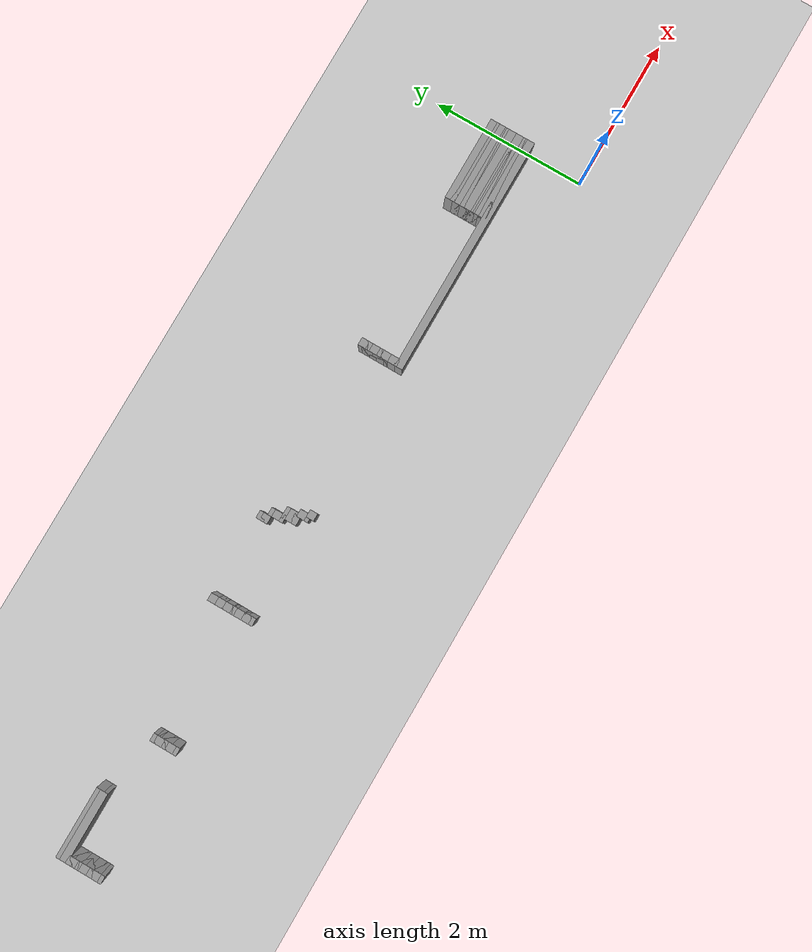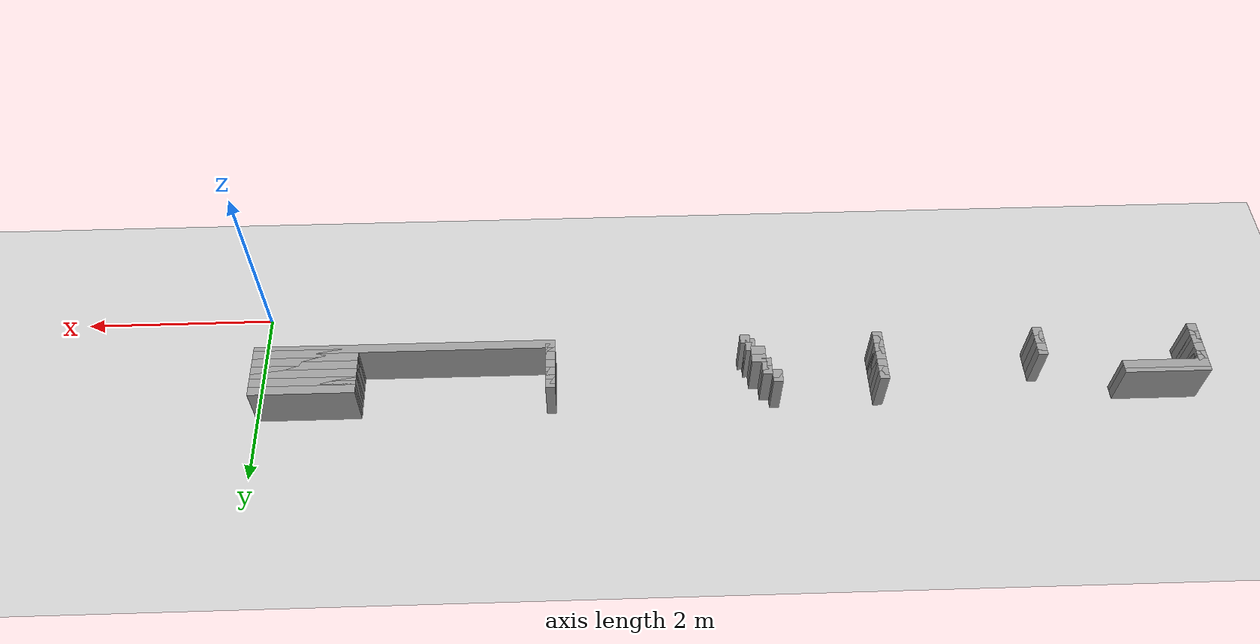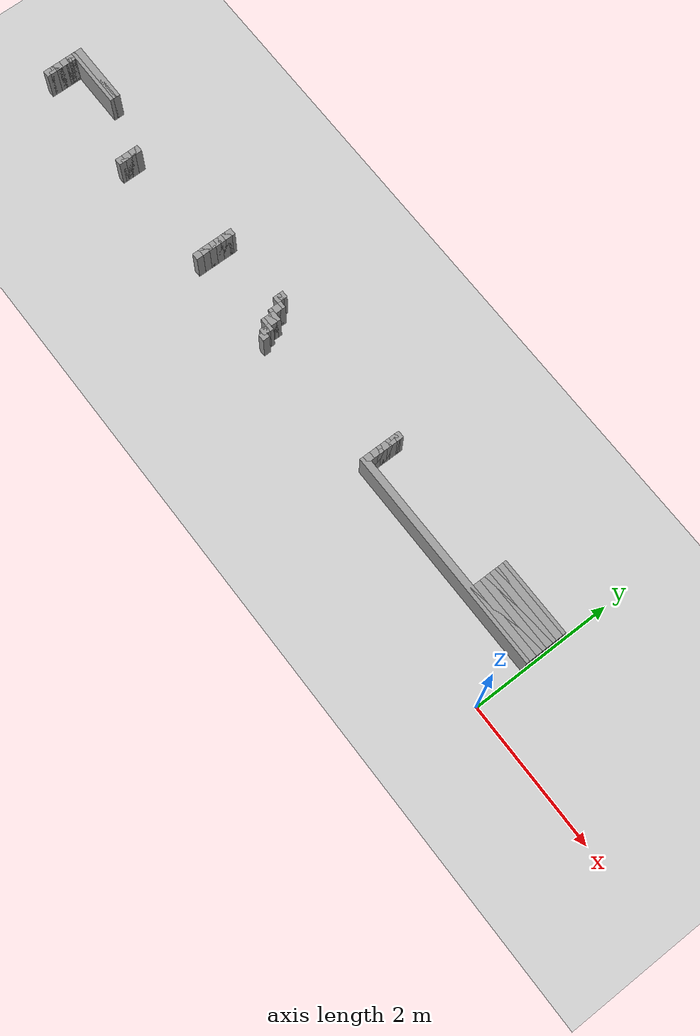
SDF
<sdf version="1.6">
 <world name="GridMap">
  <include><uri>model://sun</uri></include>
  <include><uri>model://ground_plane</uri></include>
  <model name="GridMap">
   <link name="Wall_(31.5,15.0)">
    <collision name="Wall_(31.5,15.0)_Collision">
     <geometry><box><size>3.1500000000000004 0.1 0.5</size></box></geometry>
     <pose>-1.5750000000000002 0.75 0.25 0 -0 0</pose>
    </collision>
    <inertial>
     <mass>0.5</mass>
     <pose>0 0.01 0 0 0 0</pose>
     <inertia><ixx>0.004</ixx><ixy>0.001</ixy><ixz>0</ixz><iyy>0.006</iyy><iyz>0</iyz><izz>0.007</izz></inertia>
    </inertial>
    <visual name="Wall_(31.5,15.0)_Visual">
     <geometry><box><size>3.1500000000000004 0.1 0.5</size></box></geometry>
     <pose>-1.5750000000000002 0.75 0.25 0 -0 0</pose>
     <material>
      <script><uri>file://media/materials/scripts/gazebo.material</uri><name>Gazebo/Grey</name></script>
      <ambient>1 1 1 1</ambient>
     </material>
     <meta><layer>0</layer></meta>
    </visual>
   </link>
   <link name="Wall_(103.0,15.0)">
    <collision name="Wall_(103.0,15.0)_Collision">
     <geometry><box><size>0.1 0.1 0.5</size></box></geometry>
     <pose>-5.15 0.75 0.25 0 -0 0</pose>
    </collision>
    <inertial>
     <mass>0.5</mass>
     <pose>0 0.01 0 0 0 0</pose>
     <inertia><ixx>0.004</ixx><ixy>0.001</ixy><ixz>0</ixz><iyy>0.006</iyy><iyz>0</iyz><izz>0.007</izz></inertia>
    </inertial>
    <visual name="Wall_(103.0,15.0)_Visual">
     <geometry><box><size>0.1 0.1 0.5</size></box></geometry>
     <pose>-5.15 0.75 0.25 0 -0 0</pose>
     <material>
      <script><uri>file://media/materials/scripts/gazebo.material</uri><name>Gazebo/Grey</name></script>
      <ambient>1 1 1 1</ambient>
     </material>
     <meta><layer>0</layer></meta>
    </visual>
   </link>
   <link name="Wall_(131.0,15.0)">
    <collision name="Wall_(131.0,15.0)_Collision">
     <geometry><box><size>0.1 0.1 0.5</size></box></geometry>
     <pose>-6.550000000000001 0.75 0.25 0 -0 0</pose>
    </collision>
    <inertial>
     <mass>0.5</mass>
     <pose>0 0.01 0 0 0 0</pose>
     <inertia><ixx>0.004</ixx><ixy>0.001</ixy><ixz>0</ixz><iyy>0.006</iyy><iyz>0</iyz><izz>0.007</izz></inertia>
    </inertial>
    <visual name="Wall_(131.0,15.0)_Visual">
     <geometry><box><size>0.1 0.1 0.5</size></box></geometry>
     <pose>-6.550000000000001 0.75 0.25 0 -0 0</pose>
     <material>
      <script><uri>file://media/materials/scripts/gazebo.material</uri><name>Gazebo/Grey</name></script>
      <ambient>1 1 1 1</ambient>
     </material>
     <meta><layer>0</layer></meta>
    </visual>
   </link>
   <link name="Wall_(165.0,15.0)">
    <collision name="Wall_(165.0,15.0)_Collision">
     <geometry><box><size>0.1 0.1 0.5</size></box></geometry>
     <pose>-8.25 0.75 0.25 0 -0 0</pose>
    </collision>
    <inertial>
     <mass>0.5</mass>
     <pose>0 0.01 0 0 0 0</pose>
     <inertia><ixx>0.004</ixx><ixy>0.001</ixy><ixz>0</ixz><iyy>0.006</iyy><iyz>0</iyz><izz>0.007</izz></inertia>
    </inertial>
    <visual name="Wall_(165.0,15.0)_Visual">
     <geometry><box><size>0.1 0.1 0.5</size></box></geometry>
     <pose>-8.25 0.75 0.25 0 -0 0</pose>
     <material>
      <script><uri>file://media/materials/scripts/gazebo.material</uri><name>Gazebo/Grey</name></script>
      <ambient>1 1 1 1</ambient>
     </material>
     <meta><layer>0</layer></meta>
    </visual>
   </link>
   <link name="Wall_(198.0,15.0)">
    <collision name="Wall_(198.0,15.0)_Collision">
     <geometry><box><size>0.1 0.1 0.5</size></box></geometry>
     <pose>-9.9 0.75 0.25 0 -0 0</pose>
    </collision>
    <inertial>
     <mass>0.5</mass>
     <pose>0 0.01 0 0 0 0</pose>
     <inertia><ixx>0.004</ixx><ixy>0.001</ixy><ixz>0</ixz><iyy>0.006</iyy><iyz>0</iyz><izz>0.007</izz></inertia>
    </inertial>
    <visual name="Wall_(198.0,15.0)_Visual">
     <geometry><box><size>0.1 0.1 0.5</size></box></geometry>
     <pose>-9.9 0.75 0.25 0 -0 0</pose>
     <material>
      <script><uri>file://media/materials/scripts/gazebo.material</uri><name>Gazebo/Grey</name></script>
      <ambient>1 1 1 1</ambient>
     </material>
     <meta><layer>0</layer></meta>
    </visual>
   </link>
   <link name="Wall_(11.0,16.0)">
    <collision name="Wall_(11.0,16.0)_Collision">
     <geometry><box><size>1.1 0.1 0.5</size></box></geometry>
     <pose>-0.55 0.8 0.25 0 -0 0</pose>
    </collision>
    <inertial>
     <mass>0.5</mass>
     <pose>0 0.01 0 0 0 0</pose>
     <inertia><ixx>0.004</ixx><ixy>0.001</ixy><ixz>0</ixz><iyy>0.006</iyy><iyz>0</iyz><izz>0.007</izz></inertia>
    </inertial>
    <visual name="Wall_(11.0,16.0)_Visual">
     <geometry><box><size>1.1 0.1 0.5</size></box></geometry>
     <pose>-0.55 0.8 0.25 0 -0 0</pose>
     <material>
      <script><uri>file://media/materials/scripts/gazebo.material</uri><name>Gazebo/Grey</name></script>
      <ambient>1 1 1 1</ambient>
     </material>
     <meta><layer>0</layer></meta>
    </visual>
   </link>
   <link name="Wall_(62.0,16.0)">
    <collision name="Wall_(62.0,16.0)_Collision">
     <geometry><box><size>0.1 0.1 0.5</size></box></geometry>
     <pose>-3.1 0.8 0.25 0 -0 0</pose>
    </collision>
    <inertial>
     <mass>0.5</mass>
     <pose>0 0.01 0 0 0 0</pose>
     <inertia><ixx>0.004</ixx><ixy>0.001</ixy><ixz>0</ixz><iyy>0.006</iyy><iyz>0</iyz><izz>0.007</izz></inertia>
    </inertial>
    <visual name="Wall_(62.0,16.0)_Visual">
     <geometry><box><size>0.1 0.1 0.5</size></box></geometry>
     <pose>-3.1 0.8 0.25 0 -0 0</pose>
     <material>
      <script><uri>file://media/materials/scripts/gazebo.material</uri><name>Gazebo/Grey</name></script>
      <ambient>1 1 1 1</ambient>
     </material>
     <meta><layer>0</layer></meta>
    </visual>
   </link>
   <link name="Wall_(104.0,16.0)">
    <collision name="Wall_(104.0,16.0)_Collision">
     <geometry><box><size>0.1 0.1 0.5</size></box></geometry>
     <pose>-5.2 0.8 0.25 0 -0 0</pose>
    </collision>
    <inertial>
     <mass>0.5</mass>
     <pose>0 0.01 0 0 0 0</pose>
     <inertia><ixx>0.004</ixx><ixy>0.001</ixy><ixz>0</ixz><iyy>0.006</iyy><iyz>0</iyz><izz>0.007</izz></inertia>
    </inertial>
    <visual name="Wall_(104.0,16.0)_Visual">
     <geometry><box><size>0.1 0.1 0.5</size></box></geometry>
     <pose>-5.2 0.8 0.25 0 -0 0</pose>
     <material>
      <script><uri>file://media/materials/scripts/gazebo.material</uri><name>Gazebo/Grey</name></script>
      <ambient>1 1 1 1</ambient>
     </material>
     <meta><layer>0</layer></meta>
    </visual>
   </link>
   <link name="Wall_(131.0,16.0)">
    <collision name="Wall_(131.0,16.0)_Collision">
     <geometry><box><size>0.1 0.1 0.5</size></box></geometry>
     <pose>-6.550000000000001 0.8 0.25 0 -0 0</pose>
    </collision>
    <inertial>
     <mass>0.5</mass>
     <pose>0 0.01 0 0 0 0</pose>
     <inertia><ixx>0.004</ixx><ixy>0.001</ixy><ixz>0</ixz><iyy>0.006</iyy><iyz>0</iyz><izz>0.007</izz></inertia>
    </inertial>
    <visual name="Wall_(131.0,16.0)_Visual">
     <geometry><box><size>0.1 0.1 0.5</size></box></geometry>
     <pose>-6.550000000000001 0.8 0.25 0 -0 0</pose>
     <material>
      <script><uri>file://media/materials/scripts/gazebo.material</uri><name>Gazebo/Grey</name></script>
      <ambient>1 1 1 1</ambient>
     </material>
     <meta><layer>0</layer></meta>
    </visual>
   </link>
   <link name="Wall_(165.0,16.0)">
    <collision name="Wall_(165.0,16.0)_Collision">
     <geometry><box><size>0.1 0.1 0.5</size></box></geometry>
     <pose>-8.25 0.8 0.25 0 -0 0</pose>
    </collision>
    <inertial>
     <mass>0.5</mass>
     <pose>0 0.01 0 0 0 0</pose>
     <inertia><ixx>0.004</ixx><ixy>0.001</ixy><ixz>0</ixz><iyy>0.006</iyy><iyz>0</iyz><izz>0.007</izz></inertia>
    </inertial>
    <visual name="Wall_(165.0,16.0)_Visual">
     <geometry><box><size>0.1 0.1 0.5</size></box></geometry>
     <pose>-8.25 0.8 0.25 0 -0 0</pose>
     <material>
      <script><uri>file://media/materials/scripts/gazebo.material</uri><name>Gazebo/Grey</name></script>
      <ambient>1 1 1 1</ambient>
     </material>
     <meta><layer>0</layer></meta>
    </visual>
   </link>
   <link name="Wall_(198.0,16.0)">
    <collision name="Wall_(198.0,16.0)_Collision">
     <geometry><box><size>0.1 0.1 0.5</size></box></geometry>
     <pose>-9.9 0.8 0.25 0 -0 0</pose>
    </collision>
    <inertial>
     <mass>0.5</mass>
     <pose>0 0.01 0 0 0 0</pose>
     <inertia><ixx>0.004</ixx><ixy>0.001</ixy><ixz>0</ixz><iyy>0.006</iyy><iyz>0</iyz><izz>0.007</izz></inertia>
    </inertial>
    <visual name="Wall_(198.0,16.0)_Visual">
     <geometry><box><size>0.1 0.1 0.5</size></box></geometry>
     <pose>-9.9 0.8 0.25 0 -0 0</pose>
     <material>
      <script><uri>file://media/materials/scripts/gazebo.material</uri><name>Gazebo/Grey</name></script>
      <ambient>1 1 1 1</ambient>
     </material>
     <meta><layer>0</layer></meta>
    </visual>
   </link>
   <link name="Wall_(11.0,17.0)">
    <collision name="Wall_(11.0,17.0)_Collision">
     <geometry><box><size>1.1 0.1 0.5</size></box></geometry>
     <pose>-0.55 0.8500000000000001 0.25 0 -0 0</pose>
    </collision>
    <inertial>
     <mass>0.5</mass>
     <pose>0 0.01 0 0 0 0</pose>
     <inertia><ixx>0.004</ixx><ixy>0.001</ixy><ixz>0</ixz><iyy>0.006</iyy><iyz>0</iyz><izz>0.007</izz></inertia>
    </inertial>
    <visual name="Wall_(11.0,17.0)_Visual">
     <geometry><box><size>1.1 0.1 0.5</size></box></geometry>
     <pose>-0.55 0.8500000000000001 0.25 0 -0 0</pose>
     <material>
      <script><uri>file://media/materials/scripts/gazebo.material</uri><name>Gazebo/Grey</name></script>
      <ambient>1 1 1 1</ambient>
     </material>
     <meta><layer>0</layer></meta>
    </visual>
   </link>
   <link name="Wall_(62.0,17.0)">
    <collision name="Wall_(62.0,17.0)_Collision">
     <geometry><box><size>0.1 0.1 0.5</size></box></geometry>
     <pose>-3.1 0.8500000000000001 0.25 0 -0 0</pose>
    </collision>
    <inertial>
     <mass>0.5</mass>
     <pose>0 0.01 0 0 0 0</pose>
     <inertia><ixx>0.004</ixx><ixy>0.001</ixy><ixz>0</ixz><iyy>0.006</iyy><iyz>0</iyz><izz>0.007</izz></inertia>
    </inertial>
    <visual name="Wall_(62.0,17.0)_Visual">
     <geometry><box><size>0.1 0.1 0.5</size></box></geometry>
     <pose>-3.1 0.8500000000000001 0.25 0 -0 0</pose>
     <material>
      <script><uri>file://media/materials/scripts/gazebo.material</uri><name>Gazebo/Grey</name></script>
      <ambient>1 1 1 1</ambient>
     </material>
     <meta><layer>0</layer></meta>
    </visual>
   </link>
   <link name="Wall_(104.0,17.0)">
    <collision name="Wall_(104.0,17.0)_Collision">
     <geometry><box><size>0.1 0.1 0.5</size></box></geometry>
     <pose>-5.2 0.8500000000000001 0.25 0 -0 0</pose>
    </collision>
    <inertial>
     <mass>0.5</mass>
     <pose>0 0.01 0 0 0 0</pose>
     <inertia><ixx>0.004</ixx><ixy>0.001</ixy><ixz>0</ixz><iyy>0.006</iyy><iyz>0</iyz><izz>0.007</izz></inertia>
    </inertial>
    <visual name="Wall_(104.0,17.0)_Visual">
     <geometry><box><size>0.1 0.1 0.5</size></box></geometry>
     <pose>-5.2 0.8500000000000001 0.25 0 -0 0</pose>
     <material>
      <script><uri>file://media/materials/scripts/gazebo.material</uri><name>Gazebo/Grey</name></script>
      <ambient>1 1 1 1</ambient>
     </material>
     <meta><layer>0</layer></meta>
    </visual>
   </link>
   <link name="Wall_(131.0,17.0)">
    <collision name="Wall_(131.0,17.0)_Collision">
     <geometry><box><size>0.1 0.1 0.5</size></box></geometry>
     <pose>-6.550000000000001 0.8500000000000001 0.25 0 -0 0</pose>
    </collision>
    <inertial>
     <mass>0.5</mass>
     <pose>0 0.01 0 0 0 0</pose>
     <inertia><ixx>0.004</ixx><ixy>0.001</ixy><ixz>0</ixz><iyy>0.006</iyy><iyz>0</iyz><izz>0.007</izz></inertia>
    </inertial>
    <visual name="Wall_(131.0,17.0)_Visual">
     <geometry><box><size>0.1 0.1 0.5</size></box></geometry>
     <pose>-6.550000000000001 0.8500000000000001 0.25 0 -0 0</pose>
     <material>
      <script><uri>file://media/materials/scripts/gazebo.material</uri><name>Gazebo/Grey</name></script>
      <ambient>1 1 1 1</ambient>
     </material>
     <meta><layer>0</layer></meta>
    </visual>
   </link>
   <link name="Wall_(165.0,17.0)">
    <collision name="Wall_(165.0,17.0)_Collision">
     <geometry><box><size>0.1 0.1 0.5</size></box></geometry>
     <pose>-8.25 0.8500000000000001 0.25 0 -0 0</pose>
    </collision>
    <inertial>
     <mass>0.5</mass>
     <pose>0 0.01 0 0 0 0</pose>
     <inertia><ixx>0.004</ixx><ixy>0.001</ixy><ixz>0</ixz><iyy>0.006</iyy><iyz>0</iyz><izz>0.007</izz></inertia>
    </inertial>
    <visual name="Wall_(165.0,17.0)_Visual">
     <geometry><box><size>0.1 0.1 0.5</size></box></geometry>
     <pose>-8.25 0.8500000000000001 0.25 0 -0 0</pose>
     <material>
      <script><uri>file://media/materials/scripts/gazebo.material</uri><name>Gazebo/Grey</name></script>
      <ambient>1 1 1 1</ambient>
     </material>
     <meta><layer>0</layer></meta>
    </visual>
   </link>
   <link name="Wall_(198.0,17.0)">
    <collision name="Wall_(198.0,17.0)_Collision">
     <geometry><box><size>0.1 0.1 0.5</size></box></geometry>
     <pose>-9.9 0.8500000000000001 0.25 0 -0 0</pose>
    </collision>
    <inertial>
     <mass>0.5</mass>
     <pose>0 0.01 0 0 0 0</pose>
     <inertia><ixx>0.004</ixx><ixy>0.001</ixy><ixz>0</ixz><iyy>0.006</iyy><iyz>0</iyz><izz>0.007</izz></inertia>
    </inertial>
    <visual name="Wall_(198.0,17.0)_Visual">
     <geometry><box><size>0.1 0.1 0.5</size></box></geometry>
     <pose>-9.9 0.8500000000000001 0.25 0 -0 0</pose>
     <material>
      <script><uri>file://media/materials/scripts/gazebo.material</uri><name>Gazebo/Grey</name></script>
      <ambient>1 1 1 1</ambient>
     </material>
     <meta><layer>0</layer></meta>
    </visual>
   </link>
   <link name="Wall_(11.0,18.0)">
    <collision name="Wall_(11.0,18.0)_Collision">
     <geometry><box><size>1.1 0.1 0.5</size></box></geometry>
     <pose>-0.55 0.9 0.25 0 -0 0</pose>
    </collision>
    <inertial>
     <mass>0.5</mass>
     <pose>0 0.01 0 0 0 0</pose>
     <inertia><ixx>0.004</ixx><ixy>0.001</ixy><ixz>0</ixz><iyy>0.006</iyy><iyz>0</iyz><izz>0.007</izz></inertia>
    </inertial>
    <visual name="Wall_(11.0,18.0)_Visual">
     <geometry><box><size>1.1 0.1 0.5</size></box></geometry>
     <pose>-0.55 0.9 0.25 0 -0 0</pose>
     <material>
      <script><uri>file://media/materials/scripts/gazebo.material</uri><name>Gazebo/Grey</name></script>
      <ambient>1 1 1 1</ambient>
     </material>
     <meta><layer>0</layer></meta>
    </visual>
   </link>
   <link name="Wall_(62.0,18.0)">
    <collision name="Wall_(62.0,18.0)_Collision">
     <geometry><box><size>0.1 0.1 0.5</size></box></geometry>
     <pose>-3.1 0.9 0.25 0 -0 0</pose>
    </collision>
    <inertial>
     <mass>0.5</mass>
     <pose>0 0.01 0 0 0 0</pose>
     <inertia><ixx>0.004</ixx><ixy>0.001</ixy><ixz>0</ixz><iyy>0.006</iyy><iyz>0</iyz><izz>0.007</izz></inertia>
    </inertial>
    <visual name="Wall_(62.0,18.0)_Visual">
     <geometry><box><size>0.1 0.1 0.5</size></box></geometry>
     <pose>-3.1 0.9 0.25 0 -0 0</pose>
     <material>
      <script><uri>file://media/materials/scripts/gazebo.material</uri><name>Gazebo/Grey</name></script>
      <ambient>1 1 1 1</ambient>
     </material>
     <meta><layer>0</layer></meta>
    </visual>
   </link>
   <link name="Wall_(105.5,18.0)">
    <collision name="Wall_(105.5,18.0)_Collision">
     <geometry><box><size>0.15000000000000002 0.1 0.5</size></box></geometry>
     <pose>-5.275 0.9 0.25 0 -0 0</pose>
    </collision>
    <inertial>
     <mass>0.5</mass>
     <pose>0 0.01 0 0 0 0</pose>
     <inertia><ixx>0.004</ixx><ixy>0.001</ixy><ixz>0</ixz><iyy>0.006</iyy><iyz>0</iyz><izz>0.007</izz></inertia>
    </inertial>
    <visual name="Wall_(105.5,18.0)_Visual">
     <geometry><box><size>0.15000000000000002 0.1 0.5</size></box></geometry>
     <pose>-5.275 0.9 0.25 0 -0 0</pose>
     <material>
      <script><uri>file://media/materials/scripts/gazebo.material</uri><name>Gazebo/Grey</name></script>
      <ambient>1 1 1 1</ambient>
     </material>
     <meta><layer>0</layer></meta>
    </visual>
   </link>
   <link name="Wall_(131.0,18.0)">
    <collision name="Wall_(131.0,18.0)_Collision">
     <geometry><box><size>0.1 0.1 0.5</size></box></geometry>
     <pose>-6.550000000000001 0.9 0.25 0 -0 0</pose>
    </collision>
    <inertial>
     <mass>0.5</mass>
     <pose>0 0.01 0 0 0 0</pose>
     <inertia><ixx>0.004</ixx><ixy>0.001</ixy><ixz>0</ixz><iyy>0.006</iyy><iyz>0</iyz><izz>0.007</izz></inertia>
    </inertial>
    <visual name="Wall_(131.0,18.0)_Visual">
     <geometry><box><size>0.1 0.1 0.5</size></box></geometry>
     <pose>-6.550000000000001 0.9 0.25 0 -0 0</pose>
     <material>
      <script><uri>file://media/materials/scripts/gazebo.material</uri><name>Gazebo/Grey</name></script>
      <ambient>1 1 1 1</ambient>
     </material>
     <meta><layer>0</layer></meta>
    </visual>
   </link>
   <link name="Wall_(165.0,18.0)">
    <collision name="Wall_(165.0,18.0)_Collision">
     <geometry><box><size>0.1 0.1 0.5</size></box></geometry>
     <pose>-8.25 0.9 0.25 0 -0 0</pose>
    </collision>
    <inertial>
     <mass>0.5</mass>
     <pose>0 0.01 0 0 0 0</pose>
     <inertia><ixx>0.004</ixx><ixy>0.001</ixy><ixz>0</ixz><iyy>0.006</iyy><iyz>0</iyz><izz>0.007</izz></inertia>
    </inertial>
    <visual name="Wall_(165.0,18.0)_Visual">
     <geometry><box><size>0.1 0.1 0.5</size></box></geometry>
     <pose>-8.25 0.9 0.25 0 -0 0</pose>
     <material>
      <script><uri>file://media/materials/scripts/gazebo.material</uri><name>Gazebo/Grey</name></script>
      <ambient>1 1 1 1</ambient>
     </material>
     <meta><layer>0</layer></meta>
    </visual>
   </link>
   <link name="Wall_(198.0,18.0)">
    <collision name="Wall_(198.0,18.0)_Collision">
     <geometry><box><size>0.1 0.1 0.5</size></box></geometry>
     <pose>-9.9 0.9 0.25 0 -0 0</pose>
    </collision>
    <inertial>
     <mass>0.5</mass>
     <pose>0 0.01 0 0 0 0</pose>
     <inertia><ixx>0.004</ixx><ixy>0.001</ixy><ixz>0</ixz><iyy>0.006</iyy><iyz>0</iyz><izz>0.007</izz></inertia>
    </inertial>
    <visual name="Wall_(198.0,18.0)_Visual">
     <geometry><box><size>0.1 0.1 0.5</size></box></geometry>
     <pose>-9.9 0.9 0.25 0 -0 0</pose>
     <material>
      <script><uri>file://media/materials/scripts/gazebo.material</uri><name>Gazebo/Grey</name></script>
      <ambient>1 1 1 1</ambient>
     </material>
     <meta><layer>0</layer></meta>
    </visual>
   </link>
   <link name="Wall_(11.0,19.0)">
    <collision name="Wall_(11.0,19.0)_Collision">
     <geometry><box><size>1.1 0.1 0.5</size></box></geometry>
     <pose>-0.55 0.9500000000000001 0.25 0 -0 0</pose>
    </collision>
    <inertial>
     <mass>0.5</mass>
     <pose>0 0.01 0 0 0 0</pose>
     <inertia><ixx>0.004</ixx><ixy>0.001</ixy><ixz>0</ixz><iyy>0.006</iyy><iyz>0</iyz><izz>0.007</izz></inertia>
    </inertial>
    <visual name="Wall_(11.0,19.0)_Visual">
     <geometry><box><size>1.1 0.1 0.5</size></box></geometry>
     <pose>-0.55 0.9500000000000001 0.25 0 -0 0</pose>
     <material>
      <script><uri>file://media/materials/scripts/gazebo.material</uri><name>Gazebo/Grey</name></script>
      <ambient>1 1 1 1</ambient>
     </material>
     <meta><layer>0</layer></meta>
    </visual>
   </link>
   <link name="Wall_(62.0,19.0)">
    <collision name="Wall_(62.0,19.0)_Collision">
     <geometry><box><size>0.1 0.1 0.5</size></box></geometry>
     <pose>-3.1 0.9500000000000001 0.25 0 -0 0</pose>
    </collision>
    <inertial>
     <mass>0.5</mass>
     <pose>0 0.01 0 0 0 0</pose>
     <inertia><ixx>0.004</ixx><ixy>0.001</ixy><ixz>0</ixz><iyy>0.006</iyy><iyz>0</iyz><izz>0.007</izz></inertia>
    </inertial>
    <visual name="Wall_(62.0,19.0)_Visual">
     <geometry><box><size>0.1 0.1 0.5</size></box></geometry>
     <pose>-3.1 0.9500000000000001 0.25 0 -0 0</pose>
     <material>
      <script><uri>file://media/materials/scripts/gazebo.material</uri><name>Gazebo/Grey</name></script>
      <ambient>1 1 1 1</ambient>
     </material>
     <meta><layer>0</layer></meta>
    </visual>
   </link>
   <link name="Wall_(105.5,19.0)">
    <collision name="Wall_(105.5,19.0)_Collision">
     <geometry><box><size>0.15000000000000002 0.1 0.5</size></box></geometry>
     <pose>-5.275 0.9500000000000001 0.25 0 -0 0</pose>
    </collision>
    <inertial>
     <mass>0.5</mass>
     <pose>0 0.01 0 0 0 0</pose>
     <inertia><ixx>0.004</ixx><ixy>0.001</ixy><ixz>0</ixz><iyy>0.006</iyy><iyz>0</iyz><izz>0.007</izz></inertia>
    </inertial>
    <visual name="Wall_(105.5,19.0)_Visual">
     <geometry><box><size>0.15000000000000002 0.1 0.5</size></box></geometry>
     <pose>-5.275 0.9500000000000001 0.25 0 -0 0</pose>
     <material>
      <script><uri>file://media/materials/scripts/gazebo.material</uri><name>Gazebo/Grey</name></script>
      <ambient>1 1 1 1</ambient>
     </material>
     <meta><layer>0</layer></meta>
    </visual>
   </link>
   <link name="Wall_(131.0,19.0)">
    <collision name="Wall_(131.0,19.0)_Collision">
     <geometry><box><size>0.1 0.1 0.5</size></box></geometry>
     <pose>-6.550000000000001 0.9500000000000001 0.25 0 -0 0</pose>
    </collision>
    <inertial>
     <mass>0.5</mass>
     <pose>0 0.01 0 0 0 0</pose>
     <inertia><ixx>0.004</ixx><ixy>0.001</ixy><ixz>0</ixz><iyy>0.006</iyy><iyz>0</iyz><izz>0.007</izz></inertia>
    </inertial>
    <visual name="Wall_(131.0,19.0)_Visual">
     <geometry><box><size>0.1 0.1 0.5</size></box></geometry>
     <pose>-6.550000000000001 0.9500000000000001 0.25 0 -0 0</pose>
     <material>
      <script><uri>file://media/materials/scripts/gazebo.material</uri><name>Gazebo/Grey</name></script>
      <ambient>1 1 1 1</ambient>
     </material>
     <meta><layer>0</layer></meta>
    </visual>
   </link>
   <link name="Wall_(165.0,19.0)">
    <collision name="Wall_(165.0,19.0)_Collision">
     <geometry><box><size>0.1 0.1 0.5</size></box></geometry>
     <pose>-8.25 0.9500000000000001 0.25 0 -0 0</pose>
    </collision>
    <inertial>
     <mass>0.5</mass>
     <pose>0 0.01 0 0 0 0</pose>
     <inertia><ixx>0.004</ixx><ixy>0.001</ixy><ixz>0</ixz><iyy>0.006</iyy><iyz>0</iyz><izz>0.007</izz></inertia>
    </inertial>
    <visual name="Wall_(165.0,19.0)_Visual">
     <geometry><box><size>0.1 0.1 0.5</size></box></geometry>
     <pose>-8.25 0.9500000000000001 0.25 0 -0 0</pose>
     <material>
      <script><uri>file://media/materials/scripts/gazebo.material</uri><name>Gazebo/Grey</name></script>
      <ambient>1 1 1 1</ambient>
     </material>
     <meta><layer>0</layer></meta>
    </visual>
   </link>
   <link name="Wall_(198.0,19.0)">
    <collision name="Wall_(198.0,19.0)_Collision">
     <geometry><box><size>0.1 0.1 0.5</size></box></geometry>
     <pose>-9.9 0.9500000000000001 0.25 0 -0 0</pose>
    </collision>
    <inertial>
     <mass>0.5</mass>
     <pose>0 0.01 0 0 0 0</pose>
     <inertia><ixx>0.004</ixx><ixy>0.001</ixy><ixz>0</ixz><iyy>0.006</iyy><iyz>0</iyz><izz>0.007</izz></inertia>
    </inertial>
    <visual name="Wall_(198.0,19.0)_Visual">
     <geometry><box><size>0.1 0.1 0.5</size></box></geometry>
     <pose>-9.9 0.9500000000000001 0.25 0 -0 0</pose>
     <material>
      <script><uri>file://media/materials/scripts/gazebo.material</uri><name>Gazebo/Grey</name></script>
      <ambient>1 1 1 1</ambient>
     </material>
     <meta><layer>0</layer></meta>
    </visual>
   </link>
   <link name="Wall_(11.0,20.0)">
    <collision name="Wall_(11.0,20.0)_Collision">
     <geometry><box><size>1.1 0.1 0.5</size></box></geometry>
     <pose>-0.55 1.0 0.25 0 -0 0</pose>
    </collision>
    <inertial>
     <mass>0.5</mass>
     <pose>0 0.01 0 0 0 0</pose>
     <inertia><ixx>0.004</ixx><ixy>0.001</ixy><ixz>0</ixz><iyy>0.006</iyy><iyz>0</iyz><izz>0.007</izz></inertia>
    </inertial>
    <visual name="Wall_(11.0,20.0)_Visual">
     <geometry><box><size>1.1 0.1 0.5</size></box></geometry>
     <pose>-0.55 1.0 0.25 0 -0 0</pose>
     <material>
      <script><uri>file://media/materials/scripts/gazebo.material</uri><name>Gazebo/Grey</name></script>
      <ambient>1 1 1 1</ambient>
     </material>
     <meta><layer>0</layer></meta>
    </visual>
   </link>
   <link name="Wall_(62.0,20.0)">
    <collision name="Wall_(62.0,20.0)_Collision">
     <geometry><box><size>0.1 0.1 0.5</size></box></geometry>
     <pose>-3.1 1.0 0.25 0 -0 0</pose>
    </collision>
    <inertial>
     <mass>0.5</mass>
     <pose>0 0.01 0 0 0 0</pose>
     <inertia><ixx>0.004</ixx><ixy>0.001</ixy><ixz>0</ixz><iyy>0.006</iyy><iyz>0</iyz><izz>0.007</izz></inertia>
    </inertial>
    <visual name="Wall_(62.0,20.0)_Visual">
     <geometry><box><size>0.1 0.1 0.5</size></box></geometry>
     <pose>-3.1 1.0 0.25 0 -0 0</pose>
     <material>
      <script><uri>file://media/materials/scripts/gazebo.material</uri><name>Gazebo/Grey</name></script>
      <ambient>1 1 1 1</ambient>
     </material>
     <meta><layer>0</layer></meta>
    </visual>
   </link>
   <link name="Wall_(105.5,20.0)">
    <collision name="Wall_(105.5,20.0)_Collision">
     <geometry><box><size>0.15000000000000002 0.1 0.5</size></box></geometry>
     <pose>-5.275 1.0 0.25 0 -0 0</pose>
    </collision>
    <inertial>
     <mass>0.5</mass>
     <pose>0 0.01 0 0 0 0</pose>
     <inertia><ixx>0.004</ixx><ixy>0.001</ixy><ixz>0</ixz><iyy>0.006</iyy><iyz>0</iyz><izz>0.007</izz></inertia>
    </inertial>
    <visual name="Wall_(105.5,20.0)_Visual">
     <geometry><box><size>0.15000000000000002 0.1 0.5</size></box></geometry>
     <pose>-5.275 1.0 0.25 0 -0 0</pose>
     <material>
      <script><uri>file://media/materials/scripts/gazebo.material</uri><name>Gazebo/Grey</name></script>
      <ambient>1 1 1 1</ambient>
     </material>
     <meta><layer>0</layer></meta>
    </visual>
   </link>
   <link name="Wall_(131.0,20.0)">
    <collision name="Wall_(131.0,20.0)_Collision">
     <geometry><box><size>0.1 0.1 0.5</size></box></geometry>
     <pose>-6.550000000000001 1.0 0.25 0 -0 0</pose>
    </collision>
    <inertial>
     <mass>0.5</mass>
     <pose>0 0.01 0 0 0 0</pose>
     <inertia><ixx>0.004</ixx><ixy>0.001</ixy><ixz>0</ixz><iyy>0.006</iyy><iyz>0</iyz><izz>0.007</izz></inertia>
    </inertial>
    <visual name="Wall_(131.0,20.0)_Visual">
     <geometry><box><size>0.1 0.1 0.5</size></box></geometry>
     <pose>-6.550000000000001 1.0 0.25 0 -0 0</pose>
     <material>
      <script><uri>file://media/materials/scripts/gazebo.material</uri><name>Gazebo/Grey</name></script>
      <ambient>1 1 1 1</ambient>
     </material>
     <meta><layer>0</layer></meta>
    </visual>
   </link>
   <link name="Wall_(165.0,20.0)">
    <collision name="Wall_(165.0,20.0)_Collision">
     <geometry><box><size>0.1 0.1 0.5</size></box></geometry>
     <pose>-8.25 1.0 0.25 0 -0 0</pose>
    </collision>
    <inertial>
     <mass>0.5</mass>
     <pose>0 0.01 0 0 0 0</pose>
     <inertia><ixx>0.004</ixx><ixy>0.001</ixy><ixz>0</ixz><iyy>0.006</iyy><iyz>0</iyz><izz>0.007</izz></inertia>
    </inertial>
    <visual name="Wall_(165.0,20.0)_Visual">
     <geometry><box><size>0.1 0.1 0.5</size></box></geometry>
     <pose>-8.25 1.0 0.25 0 -0 0</pose>
     <material>
      <script><uri>file://media/materials/scripts/gazebo.material</uri><name>Gazebo/Grey</name></script>
      <ambient>1 1 1 1</ambient>
     </material>
     <meta><layer>0</layer></meta>
    </visual>
   </link>
   <link name="Wall_(198.0,20.0)">
    <collision name="Wall_(198.0,20.0)_Collision">
     <geometry><box><size>0.1 0.1 0.5</size></box></geometry>
     <pose>-9.9 1.0 0.25 0 -0 0</pose>
    </collision>
    <inertial>
     <mass>0.5</mass>
     <pose>0 0.01 0 0 0 0</pose>
     <inertia><ixx>0.004</ixx><ixy>0.001</ixy><ixz>0</ixz><iyy>0.006</iyy><iyz>0</iyz><izz>0.007</izz></inertia>
    </inertial>
    <visual name="Wall_(198.0,20.0)_Visual">
     <geometry><box><size>0.1 0.1 0.5</size></box></geometry>
     <pose>-9.9 1.0 0.25 0 -0 0</pose>
     <material>
      <script><uri>file://media/materials/scripts/gazebo.material</uri><name>Gazebo/Grey</name></script>
      <ambient>1 1 1 1</ambient>
     </material>
     <meta><layer>0</layer></meta>
    </visual>
   </link>
   <link name="Wall_(11.0,21.0)">
    <collision name="Wall_(11.0,21.0)_Collision">
     <geometry><box><size>1.1 0.1 0.5</size></box></geometry>
     <pose>-0.55 1.05 0.25 0 -0 0</pose>
    </collision>
    <inertial>
     <mass>0.5</mass>
     <pose>0 0.01 0 0 0 0</pose>
     <inertia><ixx>0.004</ixx><ixy>0.001</ixy><ixz>0</ixz><iyy>0.006</iyy><iyz>0</iyz><izz>0.007</izz></inertia>
    </inertial>
    <visual name="Wall_(11.0,21.0)_Visual">
     <geometry><box><size>1.1 0.1 0.5</size></box></geometry>
     <pose>-0.55 1.05 0.25 0 -0 0</pose>
     <material>
      <script><uri>file://media/materials/scripts/gazebo.material</uri><name>Gazebo/Grey</name></script>
      <ambient>1 1 1 1</ambient>
     </material>
     <meta><layer>0</layer></meta>
    </visual>
   </link>
   <link name="Wall_(62.0,21.0)">
    <collision name="Wall_(62.0,21.0)_Collision">
     <geometry><box><size>0.1 0.1 0.5</size></box></geometry>
     <pose>-3.1 1.05 0.25 0 -0 0</pose>
    </collision>
    <inertial>
     <mass>0.5</mass>
     <pose>0 0.01 0 0 0 0</pose>
     <inertia><ixx>0.004</ixx><ixy>0.001</ixy><ixz>0</ixz><iyy>0.006</iyy><iyz>0</iyz><izz>0.007</izz></inertia>
    </inertial>
    <visual name="Wall_(62.0,21.0)_Visual">
     <geometry><box><size>0.1 0.1 0.5</size></box></geometry>
     <pose>-3.1 1.05 0.25 0 -0 0</pose>
     <material>
      <script><uri>file://media/materials/scripts/gazebo.material</uri><name>Gazebo/Grey</name></script>
      <ambient>1 1 1 1</ambient>
     </material>
     <meta><layer>0</layer></meta>
    </visual>
   </link>
   <link name="Wall_(107.0,21.0)">
    <collision name="Wall_(107.0,21.0)_Collision">
     <geometry><box><size>0.1 0.1 0.5</size></box></geometry>
     <pose>-5.3500000000000005 1.05 0.25 0 -0 0</pose>
    </collision>
    <inertial>
     <mass>0.5</mass>
     <pose>0 0.01 0 0 0 0</pose>
     <inertia><ixx>0.004</ixx><ixy>0.001</ixy><ixz>0</ixz><iyy>0.006</iyy><iyz>0</iyz><izz>0.007</izz></inertia>
    </inertial>
    <visual name="Wall_(107.0,21.0)_Visual">
     <geometry><box><size>0.1 0.1 0.5</size></box></geometry>
     <pose>-5.3500000000000005 1.05 0.25 0 -0 0</pose>
     <material>
      <script><uri>file://media/materials/scripts/gazebo.material</uri><name>Gazebo/Grey</name></script>
      <ambient>1 1 1 1</ambient>
     </material>
     <meta><layer>0</layer></meta>
    </visual>
   </link>
   <link name="Wall_(131.0,21.0)">
    <collision name="Wall_(131.0,21.0)_Collision">
     <geometry><box><size>0.1 0.1 0.5</size></box></geometry>
     <pose>-6.550000000000001 1.05 0.25 0 -0 0</pose>
    </collision>
    <inertial>
     <mass>0.5</mass>
     <pose>0 0.01 0 0 0 0</pose>
     <inertia><ixx>0.004</ixx><ixy>0.001</ixy><ixz>0</ixz><iyy>0.006</iyy><iyz>0</iyz><izz>0.007</izz></inertia>
    </inertial>
    <visual name="Wall_(131.0,21.0)_Visual">
     <geometry><box><size>0.1 0.1 0.5</size></box></geometry>
     <pose>-6.550000000000001 1.05 0.25 0 -0 0</pose>
     <material>
      <script><uri>file://media/materials/scripts/gazebo.material</uri><name>Gazebo/Grey</name></script>
      <ambient>1 1 1 1</ambient>
     </material>
     <meta><layer>0</layer></meta>
    </visual>
   </link>
   <link name="Wall_(198.0,21.0)">
    <collision name="Wall_(198.0,21.0)_Collision">
     <geometry><box><size>0.1 0.1 0.5</size></box></geometry>
     <pose>-9.9 1.05 0.25 0 -0 0</pose>
    </collision>
    <inertial>
     <mass>0.5</mass>
     <pose>0 0.01 0 0 0 0</pose>
     <inertia><ixx>0.004</ixx><ixy>0.001</ixy><ixz>0</ixz><iyy>0.006</iyy><iyz>0</iyz><izz>0.007</izz></inertia>
    </inertial>
    <visual name="Wall_(198.0,21.0)_Visual">
     <geometry><box><size>0.1 0.1 0.5</size></box></geometry>
     <pose>-9.9 1.05 0.25 0 -0 0</pose>
     <material>
      <script><uri>file://media/materials/scripts/gazebo.material</uri><name>Gazebo/Grey</name></script>
      <ambient>1 1 1 1</ambient>
     </material>
     <meta><layer>0</layer></meta>
    </visual>
   </link>
   <link name="Wall_(11.0,22.0)">
    <collision name="Wall_(11.0,22.0)_Collision">
     <geometry><box><size>1.1 0.1 0.5</size></box></geometry>
     <pose>-0.55 1.1 0.25 0 -0 0</pose>
    </collision>
    <inertial>
     <mass>0.5</mass>
     <pose>0 0.01 0 0 0 0</pose>
     <inertia><ixx>0.004</ixx><ixy>0.001</ixy><ixz>0</ixz><iyy>0.006</iyy><iyz>0</iyz><izz>0.007</izz></inertia>
    </inertial>
    <visual name="Wall_(11.0,22.0)_Visual">
     <geometry><box><size>1.1 0.1 0.5</size></box></geometry>
     <pose>-0.55 1.1 0.25 0 -0 0</pose>
     <material>
      <script><uri>file://media/materials/scripts/gazebo.material</uri><name>Gazebo/Grey</name></script>
      <ambient>1 1 1 1</ambient>
     </material>
     <meta><layer>0</layer></meta>
    </visual>
   </link>
   <link name="Wall_(62.0,22.0)">
    <collision name="Wall_(62.0,22.0)_Collision">
     <geometry><box><size>0.1 0.1 0.5</size></box></geometry>
     <pose>-3.1 1.1 0.25 0 -0 0</pose>
    </collision>
    <inertial>
     <mass>0.5</mass>
     <pose>0 0.01 0 0 0 0</pose>
     <inertia><ixx>0.004</ixx><ixy>0.001</ixy><ixz>0</ixz><iyy>0.006</iyy><iyz>0</iyz><izz>0.007</izz></inertia>
    </inertial>
    <visual name="Wall_(62.0,22.0)_Visual">
     <geometry><box><size>0.1 0.1 0.5</size></box></geometry>
     <pose>-3.1 1.1 0.25 0 -0 0</pose>
     <material>
      <script><uri>file://media/materials/scripts/gazebo.material</uri><name>Gazebo/Grey</name></script>
      <ambient>1 1 1 1</ambient>
     </material>
     <meta><layer>0</layer></meta>
    </visual>
   </link>
   <link name="Wall_(107.0,22.0)">
    <collision name="Wall_(107.0,22.0)_Collision">
     <geometry><box><size>0.1 0.1 0.5</size></box></geometry>
     <pose>-5.3500000000000005 1.1 0.25 0 -0 0</pose>
    </collision>
    <inertial>
     <mass>0.5</mass>
     <pose>0 0.01 0 0 0 0</pose>
     <inertia><ixx>0.004</ixx><ixy>0.001</ixy><ixz>0</ixz><iyy>0.006</iyy><iyz>0</iyz><izz>0.007</izz></inertia>
    </inertial>
    <visual name="Wall_(107.0,22.0)_Visual">
     <geometry><box><size>0.1 0.1 0.5</size></box></geometry>
     <pose>-5.3500000000000005 1.1 0.25 0 -0 0</pose>
     <material>
      <script><uri>file://media/materials/scripts/gazebo.material</uri><name>Gazebo/Grey</name></script>
      <ambient>1 1 1 1</ambient>
     </material>
     <meta><layer>0</layer></meta>
    </visual>
   </link>
   <link name="Wall_(131.0,22.0)">
    <collision name="Wall_(131.0,22.0)_Collision">
     <geometry><box><size>0.1 0.1 0.5</size></box></geometry>
     <pose>-6.550000000000001 1.1 0.25 0 -0 0</pose>
    </collision>
    <inertial>
     <mass>0.5</mass>
     <pose>0 0.01 0 0 0 0</pose>
     <inertia><ixx>0.004</ixx><ixy>0.001</ixy><ixz>0</ixz><iyy>0.006</iyy><iyz>0</iyz><izz>0.007</izz></inertia>
    </inertial>
    <visual name="Wall_(131.0,22.0)_Visual">
     <geometry><box><size>0.1 0.1 0.5</size></box></geometry>
     <pose>-6.550000000000001 1.1 0.25 0 -0 0</pose>
     <material>
      <script><uri>file://media/materials/scripts/gazebo.material</uri><name>Gazebo/Grey</name></script>
      <ambient>1 1 1 1</ambient>
     </material>
     <meta><layer>0</layer></meta>
    </visual>
   </link>
   <link name="Wall_(198.0,22.0)">
    <collision name="Wall_(198.0,22.0)_Collision">
     <geometry><box><size>0.1 0.1 0.5</size></box></geometry>
     <pose>-9.9 1.1 0.25 0 -0 0</pose>
    </collision>
    <inertial>
     <mass>0.5</mass>
     <pose>0 0.01 0 0 0 0</pose>
     <inertia><ixx>0.004</ixx><ixy>0.001</ixy><ixz>0</ixz><iyy>0.006</iyy><iyz>0</iyz><izz>0.007</izz></inertia>
    </inertial>
    <visual name="Wall_(198.0,22.0)_Visual">
     <geometry><box><size>0.1 0.1 0.5</size></box></geometry>
     <pose>-9.9 1.1 0.25 0 -0 0</pose>
     <material>
      <script><uri>file://media/materials/scripts/gazebo.material</uri><name>Gazebo/Grey</name></script>
      <ambient>1 1 1 1</ambient>
     </material>
     <meta><layer>0</layer></meta>
    </visual>
   </link>
   <link name="Wall_(11.0,23.0)">
    <collision name="Wall_(11.0,23.0)_Collision">
     <geometry><box><size>1.1 0.1 0.5</size></box></geometry>
     <pose>-0.55 1.1500000000000001 0.25 0 -0 0</pose>
    </collision>
    <inertial>
     <mass>0.5</mass>
     <pose>0 0.01 0 0 0 0</pose>
     <inertia><ixx>0.004</ixx><ixy>0.001</ixy><ixz>0</ixz><iyy>0.006</iyy><iyz>0</iyz><izz>0.007</izz></inertia>
    </inertial>
    <visual name="Wall_(11.0,23.0)_Visual">
     <geometry><box><size>1.1 0.1 0.5</size></box></geometry>
     <pose>-0.55 1.1500000000000001 0.25 0 -0 0</pose>
     <material>
      <script><uri>file://media/materials/scripts/gazebo.material</uri><name>Gazebo/Grey</name></script>
      <ambient>1 1 1 1</ambient>
     </material>
     <meta><layer>0</layer></meta>
    </visual>
   </link>
   <link name="Wall_(62.0,23.0)">
    <collision name="Wall_(62.0,23.0)_Collision">
     <geometry><box><size>0.1 0.1 0.5</size></box></geometry>
     <pose>-3.1 1.1500000000000001 0.25 0 -0 0</pose>
    </collision>
    <inertial>
     <mass>0.5</mass>
     <pose>0 0.01 0 0 0 0</pose>
     <inertia><ixx>0.004</ixx><ixy>0.001</ixy><ixz>0</ixz><iyy>0.006</iyy><iyz>0</iyz><izz>0.007</izz></inertia>
    </inertial>
    <visual name="Wall_(62.0,23.0)_Visual">
     <geometry><box><size>0.1 0.1 0.5</size></box></geometry>
     <pose>-3.1 1.1500000000000001 0.25 0 -0 0</pose>
     <material>
      <script><uri>file://media/materials/scripts/gazebo.material</uri><name>Gazebo/Grey</name></script>
      <ambient>1 1 1 1</ambient>
     </material>
     <meta><layer>0</layer></meta>
    </visual>
   </link>
   <link name="Wall_(107.0,23.0)">
    <collision name="Wall_(107.0,23.0)_Collision">
     <geometry><box><size>0.1 0.1 0.5</size></box></geometry>
     <pose>-5.3500000000000005 1.1500000000000001 0.25 0 -0 0</pose>
    </collision>
    <inertial>
     <mass>0.5</mass>
     <pose>0 0.01 0 0 0 0</pose>
     <inertia><ixx>0.004</ixx><ixy>0.001</ixy><ixz>0</ixz><iyy>0.006</iyy><iyz>0</iyz><izz>0.007</izz></inertia>
    </inertial>
    <visual name="Wall_(107.0,23.0)_Visual">
     <geometry><box><size>0.1 0.1 0.5</size></box></geometry>
     <pose>-5.3500000000000005 1.1500000000000001 0.25 0 -0 0</pose>
     <material>
      <script><uri>file://media/materials/scripts/gazebo.material</uri><name>Gazebo/Grey</name></script>
      <ambient>1 1 1 1</ambient>
     </material>
     <meta><layer>0</layer></meta>
    </visual>
   </link>
   <link name="Wall_(131.0,23.0)">
    <collision name="Wall_(131.0,23.0)_Collision">
     <geometry><box><size>0.1 0.1 0.5</size></box></geometry>
     <pose>-6.550000000000001 1.1500000000000001 0.25 0 -0 0</pose>
    </collision>
    <inertial>
     <mass>0.5</mass>
     <pose>0 0.01 0 0 0 0</pose>
     <inertia><ixx>0.004</ixx><ixy>0.001</ixy><ixz>0</ixz><iyy>0.006</iyy><iyz>0</iyz><izz>0.007</izz></inertia>
    </inertial>
    <visual name="Wall_(131.0,23.0)_Visual">
     <geometry><box><size>0.1 0.1 0.5</size></box></geometry>
     <pose>-6.550000000000001 1.1500000000000001 0.25 0 -0 0</pose>
     <material>
      <script><uri>file://media/materials/scripts/gazebo.material</uri><name>Gazebo/Grey</name></script>
      <ambient>1 1 1 1</ambient>
     </material>
     <meta><layer>0</layer></meta>
    </visual>
   </link>
   <link name="Wall_(198.0,23.0)">
    <collision name="Wall_(198.0,23.0)_Collision">
     <geometry><box><size>0.1 0.1 0.5</size></box></geometry>
     <pose>-9.9 1.1500000000000001 0.25 0 -0 0</pose>
    </collision>
    <inertial>
     <mass>0.5</mass>
     <pose>0 0.01 0 0 0 0</pose>
     <inertia><ixx>0.004</ixx><ixy>0.001</ixy><ixz>0</ixz><iyy>0.006</iyy><iyz>0</iyz><izz>0.007</izz></inertia>
    </inertial>
    <visual name="Wall_(198.0,23.0)_Visual">
     <geometry><box><size>0.1 0.1 0.5</size></box></geometry>
     <pose>-9.9 1.1500000000000001 0.25 0 -0 0</pose>
     <material>
      <script><uri>file://media/materials/scripts/gazebo.material</uri><name>Gazebo/Grey</name></script>
      <ambient>1 1 1 1</ambient>
     </material>
     <meta><layer>0</layer></meta>
    </visual>
   </link>
   <link name="Wall_(11.0,24.0)">
    <collision name="Wall_(11.0,24.0)_Collision">
     <geometry><box><size>1.1 0.1 0.5</size></box></geometry>
     <pose>-0.55 1.2000000000000002 0.25 0 -0 0</pose>
    </collision>
    <inertial>
     <mass>0.5</mass>
     <pose>0 0.01 0 0 0 0</pose>
     <inertia><ixx>0.004</ixx><ixy>0.001</ixy><ixz>0</ixz><iyy>0.006</iyy><iyz>0</iyz><izz>0.007</izz></inertia>
    </inertial>
    <visual name="Wall_(11.0,24.0)_Visual">
     <geometry><box><size>1.1 0.1 0.5</size></box></geometry>
     <pose>-0.55 1.2000000000000002 0.25 0 -0 0</pose>
     <material>
      <script><uri>file://media/materials/scripts/gazebo.material</uri><name>Gazebo/Grey</name></script>
      <ambient>1 1 1 1</ambient>
     </material>
     <meta><layer>0</layer></meta>
    </visual>
   </link>
   <link name="Wall_(62.0,24.0)">
    <collision name="Wall_(62.0,24.0)_Collision">
     <geometry><box><size>0.1 0.1 0.5</size></box></geometry>
     <pose>-3.1 1.2000000000000002 0.25 0 -0 0</pose>
    </collision>
    <inertial>
     <mass>0.5</mass>
     <pose>0 0.01 0 0 0 0</pose>
     <inertia><ixx>0.004</ixx><ixy>0.001</ixy><ixz>0</ixz><iyy>0.006</iyy><iyz>0</iyz><izz>0.007</izz></inertia>
    </inertial>
    <visual name="Wall_(62.0,24.0)_Visual">
     <geometry><box><size>0.1 0.1 0.5</size></box></geometry>
     <pose>-3.1 1.2000000000000002 0.25 0 -0 0</pose>
     <material>
      <script><uri>file://media/materials/scripts/gazebo.material</uri><name>Gazebo/Grey</name></script>
      <ambient>1 1 1 1</ambient>
     </material>
     <meta><layer>0</layer></meta>
    </visual>
   </link>
   <link name="Wall_(109.0,24.0)">
    <collision name="Wall_(109.0,24.0)_Collision">
     <geometry><box><size>0.1 0.1 0.5</size></box></geometry>
     <pose>-5.45 1.2000000000000002 0.25 0 -0 0</pose>
    </collision>
    <inertial>
     <mass>0.5</mass>
     <pose>0 0.01 0 0 0 0</pose>
     <inertia><ixx>0.004</ixx><ixy>0.001</ixy><ixz>0</ixz><iyy>0.006</iyy><iyz>0</iyz><izz>0.007</izz></inertia>
    </inertial>
    <visual name="Wall_(109.0,24.0)_Visual">
     <geometry><box><size>0.1 0.1 0.5</size></box></geometry>
     <pose>-5.45 1.2000000000000002 0.25 0 -0 0</pose>
     <material>
      <script><uri>file://media/materials/scripts/gazebo.material</uri><name>Gazebo/Grey</name></script>
      <ambient>1 1 1 1</ambient>
     </material>
     <meta><layer>0</layer></meta>
    </visual>
   </link>
   <link name="Wall_(131.0,24.0)">
    <collision name="Wall_(131.0,24.0)_Collision">
     <geometry><box><size>0.1 0.1 0.5</size></box></geometry>
     <pose>-6.550000000000001 1.2000000000000002 0.25 0 -0 0</pose>
    </collision>
    <inertial>
     <mass>0.5</mass>
     <pose>0 0.01 0 0 0 0</pose>
     <inertia><ixx>0.004</ixx><ixy>0.001</ixy><ixz>0</ixz><iyy>0.006</iyy><iyz>0</iyz><izz>0.007</izz></inertia>
    </inertial>
    <visual name="Wall_(131.0,24.0)_Visual">
     <geometry><box><size>0.1 0.1 0.5</size></box></geometry>
     <pose>-6.550000000000001 1.2000000000000002 0.25 0 -0 0</pose>
     <material>
      <script><uri>file://media/materials/scripts/gazebo.material</uri><name>Gazebo/Grey</name></script>
      <ambient>1 1 1 1</ambient>
     </material>
     <meta><layer>0</layer></meta>
    </visual>
   </link>
   <link name="Wall_(190.0,24.0)">
    <collision name="Wall_(190.0,24.0)_Collision">
     <geometry><box><size>0.9 0.1 0.5</size></box></geometry>
     <pose>-9.5 1.2000000000000002 0.25 0 -0 0</pose>
    </collision>
    <inertial>
     <mass>0.5</mass>
     <pose>0 0.01 0 0 0 0</pose>
     <inertia><ixx>0.004</ixx><ixy>0.001</ixy><ixz>0</ixz><iyy>0.006</iyy><iyz>0</iyz><izz>0.007</izz></inertia>
    </inertial>
    <visual name="Wall_(190.0,24.0)_Visual">
     <geometry><box><size>0.9 0.1 0.5</size></box></geometry>
     <pose>-9.5 1.2000000000000002 0.25 0 -0 0</pose>
     <material>
      <script><uri>file://media/materials/scripts/gazebo.material</uri><name>Gazebo/Grey</name></script>
      <ambient>1 1 1 1</ambient>
     </material>
     <meta><layer>0</layer></meta>
    </visual>
   </link>
   <link name="Wall_(11.0,25.0)">
    <collision name="Wall_(11.0,25.0)_Collision">
     <geometry><box><size>1.1 0.1 0.5</size></box></geometry>
     <pose>-0.55 1.25 0.25 0 -0 0</pose>
    </collision>
    <inertial>
     <mass>0.5</mass>
     <pose>0 0.01 0 0 0 0</pose>
     <inertia><ixx>0.004</ixx><ixy>0.001</ixy><ixz>0</ixz><iyy>0.006</iyy><iyz>0</iyz><izz>0.007</izz></inertia>
    </inertial>
    <visual name="Wall_(11.0,25.0)_Visual">
     <geometry><box><size>1.1 0.1 0.5</size></box></geometry>
     <pose>-0.55 1.25 0.25 0 -0 0</pose>
     <material>
      <script><uri>file://media/materials/scripts/gazebo.material</uri><name>Gazebo/Grey</name></script>
      <ambient>1 1 1 1</ambient>
     </material>
     <meta><layer>0</layer></meta>
    </visual>
   </link>
   <link name="Wall_(62.0,25.0)">
    <collision name="Wall_(62.0,25.0)_Collision">
     <geometry><box><size>0.1 0.1 0.5</size></box></geometry>
     <pose>-3.1 1.25 0.25 0 -0 0</pose>
    </collision>
    <inertial>
     <mass>0.5</mass>
     <pose>0 0.01 0 0 0 0</pose>
     <inertia><ixx>0.004</ixx><ixy>0.001</ixy><ixz>0</ixz><iyy>0.006</iyy><iyz>0</iyz><izz>0.007</izz></inertia>
    </inertial>
    <visual name="Wall_(62.0,25.0)_Visual">
     <geometry><box><size>0.1 0.1 0.5</size></box></geometry>
     <pose>-3.1 1.25 0.25 0 -0 0</pose>
     <material>
      <script><uri>file://media/materials/scripts/gazebo.material</uri><name>Gazebo/Grey</name></script>
      <ambient>1 1 1 1</ambient>
     </material>
     <meta><layer>0</layer></meta>
    </visual>
   </link>
   <link name="Wall_(109.0,25.0)">
    <collision name="Wall_(109.0,25.0)_Collision">
     <geometry><box><size>0.1 0.1 0.5</size></box></geometry>
     <pose>-5.45 1.25 0.25 0 -0 0</pose>
    </collision>
    <inertial>
     <mass>0.5</mass>
     <pose>0 0.01 0 0 0 0</pose>
     <inertia><ixx>0.004</ixx><ixy>0.001</ixy><ixz>0</ixz><iyy>0.006</iyy><iyz>0</iyz><izz>0.007</izz></inertia>
    </inertial>
    <visual name="Wall_(109.0,25.0)_Visual">
     <geometry><box><size>0.1 0.1 0.5</size></box></geometry>
     <pose>-5.45 1.25 0.25 0 -0 0</pose>
     <material>
      <script><uri>file://media/materials/scripts/gazebo.material</uri><name>Gazebo/Grey</name></script>
      <ambient>1 1 1 1</ambient>
     </material>
     <meta><layer>0</layer></meta>
    </visual>
   </link>
   <link name="Wall_(131.0,25.0)">
    <collision name="Wall_(131.0,25.0)_Collision">
     <geometry><box><size>0.1 0.1 0.5</size></box></geometry>
     <pose>-6.550000000000001 1.25 0.25 0 -0 0</pose>
    </collision>
    <inertial>
     <mass>0.5</mass>
     <pose>0 0.01 0 0 0 0</pose>
     <inertia><ixx>0.004</ixx><ixy>0.001</ixy><ixz>0</ixz><iyy>0.006</iyy><iyz>0</iyz><izz>0.007</izz></inertia>
    </inertial>
    <visual name="Wall_(131.0,25.0)_Visual">
     <geometry><box><size>0.1 0.1 0.5</size></box></geometry>
     <pose>-6.550000000000001 1.25 0.25 0 -0 0</pose>
     <material>
      <script><uri>file://media/materials/scripts/gazebo.material</uri><name>Gazebo/Grey</name></script>
      <ambient>1 1 1 1</ambient>
     </material>
     <meta><layer>0</layer></meta>
    </visual>
   </link>
   <link name="Wall_(190.0,25.0)">
    <collision name="Wall_(190.0,25.0)_Collision">
     <geometry><box><size>0.9 0.1 0.5</size></box></geometry>
     <pose>-9.5 1.25 0.25 0 -0 0</pose>
    </collision>
    <inertial>
     <mass>0.5</mass>
     <pose>0 0.01 0 0 0 0</pose>
     <inertia><ixx>0.004</ixx><ixy>0.001</ixy><ixz>0</ixz><iyy>0.006</iyy><iyz>0</iyz><izz>0.007</izz></inertia>
    </inertial>
    <visual name="Wall_(190.0,25.0)_Visual">
     <geometry><box><size>0.9 0.1 0.5</size></box></geometry>
     <pose>-9.5 1.25 0.25 0 -0 0</pose>
     <material>
      <script><uri>file://media/materials/scripts/gazebo.material</uri><name>Gazebo/Grey</name></script>
      <ambient>1 1 1 1</ambient>
     </material>
     <meta><layer>0</layer></meta>
    </visual>
   </link>
   <static>1</static>
  </model>
 </world>
</sdf>
